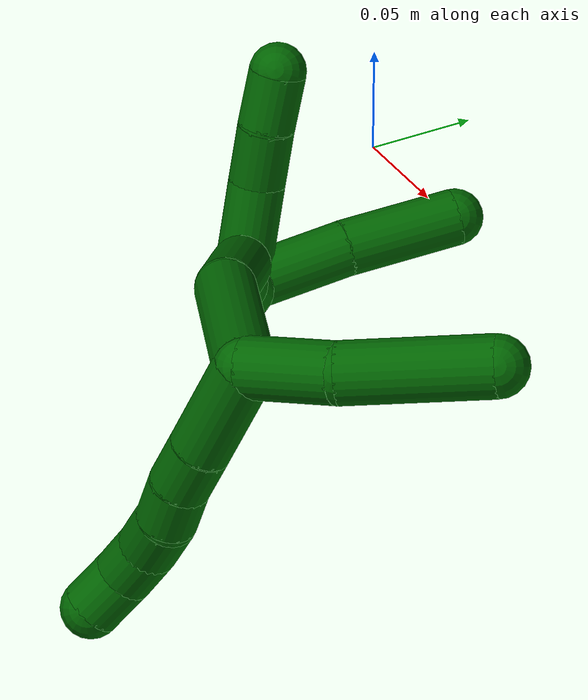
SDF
<sdf version="1.7">
 <world name="default">
  <model name="photoneo_s_sensor">
   <static>1</static>
   <pose>0 0 2 1.57079 1.57079 3.14159</pose>
   <link name="link">
    <inertial><mass>0.1</mass></inertial>
    <sensor name="sensor" type="depth">
     <update_rate>30</update_rate>
     <camera>
      <horizontal_fov>1.22</horizontal_fov>
      <image><width>1920</width><height>1200</height><format>B8G8R8</format></image>
      <clip><near>0.1</near><far>4</far></clip>
      <depth_camera><output>points</output></depth_camera>
     </camera>
     <plugin name="camera_plugin" filename="libgazebo_ros_depth_camera.so">
      <baseline>0.2</baseline>
      <alwaysOn>1</alwaysOn>
      <updateRate>0.0</updateRate>
      <cameraName>camera_ir</cameraName>
      <imageTopicName>/camera/color/image_raw</imageTopicName>
      <cameraInfoTopicName>/camera/color/camera_info</cameraInfoTopicName>
      <depthImageTopicName>/camera/depth/image_raw</depthImageTopicName>
      <depthImageCameraInfoTopicName>/camera/depth/camera_info</depthImageCameraInfoTopicName>
      <pointCloudTopicName>/camera/depth/points</pointCloudTopicName>
      <frameName>fr_optical</frameName>
      <pointCloudCutoff>0.1</pointCloudCutoff>
      <pointCloudCutoffMax>2.0</pointCloudCutoffMax>
      <distortionK1>0</distortionK1>
      <distortionK2>0</distortionK2>
      <distortionK3>0</distortionK3>
      <distortionT1>0</distortionT1>
      <distortionT2>0</distortionT2>
      <CxPrime>0</CxPrime>
      <Cx>0</Cx>
      <Cy>0</Cy>
      <focalLength>0</focalLength>
      <hackBaseline>0</hackBaseline>
     </plugin>
    </sensor>
   </link>
  </model>
  <model name="bin">
   <static>1</static>
   <link name="bottom">
    <collision name="collision-bottom">
     <pose>0 0 -0.01 0 -0 0</pose>
     <geometry><box><size>0.8 0.6 0.02</size></box></geometry>
     <surface>
      <friction><ode><mu>100</mu><mu2>100</mu2></ode></friction>
      <contact><collide_bitmask>65535</collide_bitmask></contact>
     </surface>
    </collision>
   </link>
   <link name="west_wall">
    <collision name="collision-west_wall">
     <pose>-0.41 0 0.1 0 -0 0</pose>
     <geometry><box><size>0.02 0.6 0.2</size></box></geometry>
     <surface>
      <friction><ode><mu>100</mu><mu2>100</mu2></ode></friction>
      <contact><collide_bitmask>65535</collide_bitmask></contact>
     </surface>
    </collision>
   </link>
   <link name="east_wall">
    <collision name="collision-east_wall">
     <pose>0.41 0 0.1 0 -0 0</pose>
     <geometry><box><size>0.02 0.6 0.2</size></box></geometry>
     <surface>
      <friction><ode><mu>100</mu><mu2>100</mu2></ode></friction>
      <contact><collide_bitmask>65535</collide_bitmask></contact>
     </surface>
    </collision>
   </link>
   <link name="south_wall">
    <collision name="collision-south_wall">
     <pose>0 -0.31 0.1 0 -0 0</pose>
     <geometry><box><size>0.8 0.02 0.2</size></box></geometry>
     <surface>
      <friction><ode><mu>100</mu><mu2>100</mu2></ode></friction>
      <contact><collide_bitmask>65535</collide_bitmask></contact>
     </surface>
    </collision>
   </link>
   <link name="north_wall">
    <collision name="collision-north_wall">
     <pose>0 0.31 0.1 0 -0 0</pose>
     <geometry><box><size>0.8 0.02 0.2</size></box></geometry>
     <surface>
      <friction><ode><mu>100</mu><mu2>100</mu2></ode></friction>
      <contact><collide_bitmask>65535</collide_bitmask></contact>
     </surface>
    </collision>
   </link>
  </model>
  <model name="6">
   <static>0</static>
   <link name="6">
    <collision name="collision-cylinder-e_1_2_8">
     <pose>0.012015 -0.014107 -0.012682 2.30306 0.564607 1.15386</pose>
     <geometry><cylinder><radius>0.0125</radius><length>0.044909</length></cylinder></geometry>
     <surface>
      <friction><ode><mu>1.16</mu><mu2>1.16</mu2><slip1>0</slip1><slip2>0</slip2></ode></friction>
      <contact><ode><kp>1e+06</kp><kd>1</kd><max_vel>0</max_vel><min_depth>0.001</min_depth></ode></contact>
     </surface>
    </collision>
    <visual name="visual-cylinder-e_1_2_8">
     <pose>0.012015 -0.014107 -0.012682 2.30306 0.564607 1.15386</pose>
     <geometry><cylinder><radius>0.0125</radius><length>0.044909</length></cylinder></geometry>
     <material><ambient>0 0.392157 0.003922 1</ambient></material>
    </visual>
    <collision name="collision-cylinder-e_2_8_9">
     <pose>0.029633 -0.034985 -0.032127 2.35553 0.529682 1.15857</pose>
     <geometry><cylinder><radius>0.0125</radius><length>0.022179</length></cylinder></geometry>
     <surface>
      <friction><ode><mu>1.16</mu><mu2>1.16</mu2><slip1>0</slip1><slip2>0</slip2></ode></friction>
      <contact><ode><kp>1e+06</kp><kd>1</kd><max_vel>0</max_vel><min_depth>0.001</min_depth></ode></contact>
     </surface>
    </collision>
    <visual name="visual-cylinder-e_2_8_9">
     <pose>0.029633 -0.034985 -0.032127 2.35553 0.529682 1.15857</pose>
     <geometry><cylinder><radius>0.0125</radius><length>0.022179</length></cylinder></geometry>
     <material><ambient>0 0.392157 0.003922 1</ambient></material>
    </visual>
    <collision name="collision-cylinder-e_3_9_10">
     <pose>0.041119 -0.047105 -0.045505 2.4617 0.605016 1.44603</pose>
     <geometry><cylinder><radius>0.0125</radius><length>0.020687</length></cylinder></geometry>
     <surface>
      <friction><ode><mu>1.16</mu><mu2>1.16</mu2><slip1>0</slip1><slip2>0</slip2></ode></friction>
      <contact><ode><kp>1e+06</kp><kd>1</kd><max_vel>0</max_vel><min_depth>0.001</min_depth></ode></contact>
     </surface>
    </collision>
    <visual name="visual-cylinder-e_3_9_10">
     <pose>0.041119 -0.047105 -0.045505 2.4617 0.605016 1.44603</pose>
     <geometry><cylinder><radius>0.0125</radius><length>0.020687</length></cylinder></geometry>
     <material><ambient>0 0.392157 0.003922 1</ambient></material>
    </visual>
    <collision name="collision-cylinder-e_4_10_11">
     <pose>0.051165 -0.058612 -0.060325 2.4977 0.385482 1.05879</pose>
     <geometry><cylinder><radius>0.0125</radius><length>0.022142</length></cylinder></geometry>
     <surface>
      <friction><ode><mu>1.16</mu><mu2>1.16</mu2><slip1>0</slip1><slip2>0</slip2></ode></friction>
      <contact><ode><kp>1e+06</kp><kd>1</kd><max_vel>0</max_vel><min_depth>0.001</min_depth></ode></contact>
     </surface>
    </collision>
    <visual name="visual-cylinder-e_4_10_11">
     <pose>0.051165 -0.058612 -0.060325 2.4977 0.385482 1.05879</pose>
     <geometry><cylinder><radius>0.0125</radius><length>0.022142</length></cylinder></geometry>
     <material><ambient>0 0.392157 0.003922 1</ambient></material>
    </visual>
    <collision name="collision-cylinder-e_5_11_12">
     <pose>0.059254 -0.071877 -0.074386 2.26007 0.403008 0.817348</pose>
     <geometry><cylinder><radius>0.0125</radius><length>0.020022</length></cylinder></geometry>
     <surface>
      <friction><ode><mu>1.16</mu><mu2>1.16</mu2><slip1>0</slip1><slip2>0</slip2></ode></friction>
      <contact><ode><kp>1e+06</kp><kd>1</kd><max_vel>0</max_vel><min_depth>0.001</min_depth></ode></contact>
     </surface>
    </collision>
    <visual name="visual-cylinder-e_5_11_12">
     <pose>0.059254 -0.071877 -0.074386 2.26007 0.403008 0.817348</pose>
     <geometry><cylinder><radius>0.0125</radius><length>0.020022</length></cylinder></geometry>
     <material><ambient>0 0.392157 0.003922 1</ambient></material>
    </visual>
    <collision name="collision-cylinder-e_6_12_6">
     <pose>0.067588 -0.087546 -0.083049 1.88756 0.454988 0.618514</pose>
     <geometry><cylinder><radius>0.0125</radius><length>0.020062</length></cylinder></geometry>
     <surface>
      <friction><ode><mu>1.16</mu><mu2>1.16</mu2><slip1>0</slip1><slip2>0</slip2></ode></friction>
      <contact><ode><kp>1e+06</kp><kd>1</kd><max_vel>0</max_vel><min_depth>0.001</min_depth></ode></contact>
     </surface>
    </collision>
    <visual name="visual-cylinder-e_6_12_6">
     <pose>0.067588 -0.087546 -0.083049 1.88756 0.454988 0.618514</pose>
     <geometry><cylinder><radius>0.0125</radius><length>0.020062</length></cylinder></geometry>
     <material><ambient>0 0.392157 0.003922 1</ambient></material>
    </visual>
    <collision name="collision-cylinder-e_1_2_13">
     <pose>0.006294 0.017089 0.00628 -1.21862 0.332824 -0.233379</pose>
     <geometry><cylinder><radius>0.0125</radius><length>0.038528</length></cylinder></geometry>
     <surface>
      <friction><ode><mu>1.16</mu><mu2>1.16</mu2><slip1>0</slip1><slip2>0</slip2></ode></friction>
      <contact><ode><kp>1e+06</kp><kd>1</kd><max_vel>0</max_vel><min_depth>0.001</min_depth></ode></contact>
     </surface>
    </collision>
    <visual name="visual-cylinder-e_1_2_13">
     <pose>0.006294 0.017089 0.00628 -1.21862 0.332824 -0.233379</pose>
     <geometry><cylinder><radius>0.0125</radius><length>0.038528</length></cylinder></geometry>
     <material><ambient>0 0.392157 0.003922 1</ambient></material>
    </visual>
    <collision name="collision-cylinder-e_2_13_5">
     <pose>0.02021 0.063848 0.015086 -1.48588 0.250593 -0.230356</pose>
     <geometry><cylinder><radius>0.0125</radius><length>0.061472</length></cylinder></geometry>
     <surface>
      <friction><ode><mu>1.16</mu><mu2>1.16</mu2><slip1>0</slip1><slip2>0</slip2></ode></friction>
      <contact><ode><kp>1e+06</kp><kd>1</kd><max_vel>0</max_vel><min_depth>0.001</min_depth></ode></contact>
     </surface>
    </collision>
    <visual name="visual-cylinder-e_2_13_5">
     <pose>0.02021 0.063848 0.015086 -1.48588 0.250593 -0.230356</pose>
     <geometry><cylinder><radius>0.0125</radius><length>0.061472</length></cylinder></geometry>
     <material><ambient>0 0.392157 0.003922 1</ambient></material>
    </visual>
    <collision name="collision-cylinder-e_1_2_14">
     <pose>-0.016709 -0.003207 -0.038652 3.05881 -0.406799 -2.74529</pose>
     <geometry><cylinder><radius>0.0125</radius><length>0.084461</length></cylinder></geometry>
     <surface>
      <friction><ode><mu>1.16</mu><mu2>1.16</mu2><slip1>0</slip1><slip2>0</slip2></ode></friction>
      <contact><ode><kp>1e+06</kp><kd>1</kd><max_vel>0</max_vel><min_depth>0.001</min_depth></ode></contact>
     </surface>
    </collision>
    <visual name="visual-cylinder-e_1_2_14">
     <pose>-0.016709 -0.003207 -0.038652 3.05881 -0.406799 -2.74529</pose>
     <geometry><cylinder><radius>0.0125</radius><length>0.084461</length></cylinder></geometry>
     <material><ambient>0 0.392157 0.003922 1</ambient></material>
    </visual>
    <collision name="collision-cylinder-e_2_14_15">
     <pose>-0.03808 -0.005738 -0.11216 -3.12221 -0.132913 2.85236</pose>
     <geometry><cylinder><radius>0.0125</radius><length>0.070348</length></cylinder></geometry>
     <surface>
      <friction><ode><mu>1.16</mu><mu2>1.16</mu2><slip1>0</slip1><slip2>0</slip2></ode></friction>
      <contact><ode><kp>1e+06</kp><kd>1</kd><max_vel>0</max_vel><min_depth>0.001</min_depth></ode></contact>
     </surface>
    </collision>
    <visual name="visual-cylinder-e_2_14_15">
     <pose>-0.03808 -0.005738 -0.11216 -3.12221 -0.132913 2.85236</pose>
     <geometry><cylinder><radius>0.0125</radius><length>0.070348</length></cylinder></geometry>
     <material><ambient>0 0.392157 0.003922 1</ambient></material>
    </visual>
    <collision name="collision-cylinder-e_3_15_16">
     <pose>-0.042255 -0.008756 -0.165836 2.94777 0.025368 0.259492</pose>
     <geometry><cylinder><radius>0.0125</radius><length>0.038367</length></cylinder></geometry>
     <surface>
      <friction><ode><mu>1.16</mu><mu2>1.16</mu2><slip1>0</slip1><slip2>0</slip2></ode></friction>
      <contact><ode><kp>1e+06</kp><kd>1</kd><max_vel>0</max_vel><min_depth>0.001</min_depth></ode></contact>
     </surface>
    </collision>
    <visual name="visual-cylinder-e_3_15_16">
     <pose>-0.042255 -0.008756 -0.165836 2.94777 0.025368 0.259492</pose>
     <geometry><cylinder><radius>0.0125</radius><length>0.038367</length></cylinder></geometry>
     <material><ambient>0 0.392157 0.003922 1</ambient></material>
    </visual>
    <collision name="collision-cylinder-e_4_16_17">
     <pose>-0.04149 -0.014406 -0.196535 2.97836 0.023108 0.280646</pose>
     <geometry><cylinder><radius>0.0125</radius><length>0.024088</length></cylinder></geometry>
     <surface>
      <friction><ode><mu>1.16</mu><mu2>1.16</mu2><slip1>0</slip1><slip2>0</slip2></ode></friction>
      <contact><ode><kp>1e+06</kp><kd>1</kd><max_vel>0</max_vel><min_depth>0.001</min_depth></ode></contact>
     </surface>
    </collision>
    <visual name="visual-cylinder-e_4_16_17">
     <pose>-0.04149 -0.014406 -0.196535 2.97836 0.023108 0.280646</pose>
     <geometry><cylinder><radius>0.0125</radius><length>0.024088</length></cylinder></geometry>
     <material><ambient>0 0.392157 0.003922 1</ambient></material>
    </visual>
    <collision name="collision-cylinder-e_5_17_18">
     <pose>-0.039727 -0.016571 -0.219406 3.12266 0.134296 2.86183</pose>
     <geometry><cylinder><radius>0.0125</radius><length>0.022184</length></cylinder></geometry>
     <surface>
      <friction><ode><mu>1.16</mu><mu2>1.16</mu2><slip1>0</slip1><slip2>0</slip2></ode></friction>
      <contact><ode><kp>1e+06</kp><kd>1</kd><max_vel>0</max_vel><min_depth>0.001</min_depth></ode></contact>
     </surface>
    </collision>
    <visual name="visual-cylinder-e_5_17_18">
     <pose>-0.039727 -0.016571 -0.219406 3.12266 0.134296 2.86183</pose>
     <geometry><cylinder><radius>0.0125</radius><length>0.022184</length></cylinder></geometry>
     <material><ambient>0 0.392157 0.003922 1</ambient></material>
    </visual>
    <collision name="collision-cylinder-e_6_18_19">
     <pose>-0.036893 -0.016988 -0.240411 3.12077 0.133869 2.83346</pose>
     <geometry><cylinder><radius>0.0125</radius><length>0.020216</length></cylinder></geometry>
     <surface>
      <friction><ode><mu>1.16</mu><mu2>1.16</mu2><slip1>0</slip1><slip2>0</slip2></ode></friction>
      <contact><ode><kp>1e+06</kp><kd>1</kd><max_vel>0</max_vel><min_depth>0.001</min_depth></ode></contact>
     </surface>
    </collision>
    <visual name="visual-cylinder-e_6_18_19">
     <pose>-0.036893 -0.016988 -0.240411 3.12077 0.133869 2.83346</pose>
     <geometry><cylinder><radius>0.0125</radius><length>0.020216</length></cylinder></geometry>
     <material><ambient>0 0.392157 0.003922 1</ambient></material>
    </visual>
    <collision name="collision-cylinder-e_7_19_20">
     <pose>-0.035518 -0.018587 -0.260378 3.00273 0.002547 0.036618</pose>
     <geometry><cylinder><radius>0.0125</radius><length>0.020098</length></cylinder></geometry>
     <surface>
      <friction><ode><mu>1.16</mu><mu2>1.16</mu2><slip1>0</slip1><slip2>0</slip2></ode></friction>
      <contact><ode><kp>1e+06</kp><kd>1</kd><max_vel>0</max_vel><min_depth>0.001</min_depth></ode></contact>
     </surface>
    </collision>
    <visual name="visual-cylinder-e_7_19_20">
     <pose>-0.035518 -0.018587 -0.260378 3.00273 0.002547 0.036618</pose>
     <geometry><cylinder><radius>0.0125</radius><length>0.020098</length></cylinder></geometry>
     <material><ambient>0 0.392157 0.003922 1</ambient></material>
    </visual>
    <collision name="collision-cylinder-e_8_20_1">
     <pose>-0.037512 -0.021179 -0.280173 3.02026 -0.200962 -2.05712</pose>
     <geometry><cylinder><radius>0.0125</radius><length>0.020238</length></cylinder></geometry>
     <surface>
      <friction><ode><mu>1.16</mu><mu2>1.16</mu2><slip1>0</slip1><slip2>0</slip2></ode></friction>
      <contact><ode><kp>1e+06</kp><kd>1</kd><max_vel>0</max_vel><min_depth>0.001</min_depth></ode></contact>
     </surface>
    </collision>
    <visual name="visual-cylinder-e_8_20_1">
     <pose>-0.037512 -0.021179 -0.280173 3.02026 -0.200962 -2.05712</pose>
     <geometry><cylinder><radius>0.0125</radius><length>0.020238</length></cylinder></geometry>
     <material><ambient>0 0.392157 0.003922 1</ambient></material>
    </visual>
    <collision name="collision-cylinder-e_1_1_21">
     <pose>-0.040849 0.001298 -0.29687 -1.85259 -0.053369 0.070998</pose>
     <geometry><cylinder><radius>0.0125</radius><length>0.049367</length></cylinder></geometry>
     <surface>
      <friction><ode><mu>1.16</mu><mu2>1.16</mu2><slip1>0</slip1><slip2>0</slip2></ode></friction>
      <contact><ode><kp>1e+06</kp><kd>1</kd><max_vel>0</max_vel><min_depth>0.001</min_depth></ode></contact>
     </surface>
    </collision>
    <visual name="visual-cylinder-e_1_1_21">
     <pose>-0.040849 0.001298 -0.29687 -1.85259 -0.053369 0.070998</pose>
     <geometry><cylinder><radius>0.0125</radius><length>0.049367</length></cylinder></geometry>
     <material><ambient>0 0.392157 0.003922 1</ambient></material>
    </visual>
    <collision name="collision-cylinder-e_2_21_4">
     <pose>-0.041831 0.049376 -0.310458 -1.84007 0.013207 -0.017345</pose>
     <geometry><cylinder><radius>0.0125</radius><length>0.050633</length></cylinder></geometry>
     <surface>
      <friction><ode><mu>1.16</mu><mu2>1.16</mu2><slip1>0</slip1><slip2>0</slip2></ode></friction>
      <contact><ode><kp>1e+06</kp><kd>1</kd><max_vel>0</max_vel><min_depth>0.001</min_depth></ode></contact>
     </surface>
    </collision>
    <visual name="visual-cylinder-e_2_21_4">
     <pose>-0.041831 0.049376 -0.310458 -1.84007 0.013207 -0.017345</pose>
     <geometry><cylinder><radius>0.0125</radius><length>0.050633</length></cylinder></geometry>
     <material><ambient>0 0.392157 0.003922 1</ambient></material>
    </visual>
    <collision name="collision-cylinder-e_1_1_22">
     <pose>-0.059773 -0.011689 -0.283598 -1.03014 -1.01871 0.612391</pose>
     <geometry><cylinder><radius>0.0125</radius><length>0.047546</length></cylinder></geometry>
     <surface>
      <friction><ode><mu>1.16</mu><mu2>1.16</mu2><slip1>0</slip1><slip2>0</slip2></ode></friction>
      <contact><ode><kp>1e+06</kp><kd>1</kd><max_vel>0</max_vel><min_depth>0.001</min_depth></ode></contact>
     </surface>
    </collision>
    <visual name="visual-cylinder-e_1_1_22">
     <pose>-0.059773 -0.011689 -0.283598 -1.03014 -1.01871 0.612391</pose>
     <geometry><cylinder><radius>0.0125</radius><length>0.047546</length></cylinder></geometry>
     <material><ambient>0 0.392157 0.003922 1</ambient></material>
    </visual>
    <collision name="collision-cylinder-e_2_22_23">
     <pose>-0.090467 0.00496 -0.271204 -0.78395 -0.891503 0.390013</pose>
     <geometry><cylinder><radius>0.0125</radius><length>0.026868</length></cylinder></geometry>
     <surface>
      <friction><ode><mu>1.16</mu><mu2>1.16</mu2><slip1>0</slip1><slip2>0</slip2></ode></friction>
      <contact><ode><kp>1e+06</kp><kd>1</kd><max_vel>0</max_vel><min_depth>0.001</min_depth></ode></contact>
     </surface>
    </collision>
    <visual name="visual-cylinder-e_2_22_23">
     <pose>-0.090467 0.00496 -0.271204 -0.78395 -0.891503 0.390013</pose>
     <geometry><cylinder><radius>0.0125</radius><length>0.026868</length></cylinder></geometry>
     <material><ambient>0 0.392157 0.003922 1</ambient></material>
    </visual>
    <collision name="collision-cylinder-e_3_23_3">
     <pose>-0.111207 0.017149 -0.260869 -0.960298 -0.934343 0.513788</pose>
     <geometry><cylinder><radius>0.0125</radius><length>0.025585</length></cylinder></geometry>
     <surface>
      <friction><ode><mu>1.16</mu><mu2>1.16</mu2><slip1>0</slip1><slip2>0</slip2></ode></friction>
      <contact><ode><kp>1e+06</kp><kd>1</kd><max_vel>0</max_vel><min_depth>0.001</min_depth></ode></contact>
     </surface>
    </collision>
    <visual name="visual-cylinder-e_3_23_3">
     <pose>-0.111207 0.017149 -0.260869 -0.960298 -0.934343 0.513788</pose>
     <geometry><cylinder><radius>0.0125</radius><length>0.025585</length></cylinder></geometry>
     <material><ambient>0 0.392157 0.003922 1</ambient></material>
    </visual>
    <collision name="collision-sphere-3">
     <pose>-0.121495 0.023379 -0.25651 0 -0 0</pose>
     <geometry><sphere><radius>0.0125</radius></sphere></geometry>
     <surface>
      <friction><ode><mu>1.16</mu><mu2>1.16</mu2><slip1>0</slip1><slip2>0</slip2></ode></friction>
      <contact><ode><kp>1e+06</kp><kd>1</kd><max_vel>0</max_vel><min_depth>0.001</min_depth></ode></contact>
     </surface>
    </collision>
    <visual name="visual-sphere-3">
     <pose>-0.121495 0.023379 -0.25651 0 -0 0</pose>
     <geometry><sphere><radius>0.0125</radius></sphere></geometry>
     <material><ambient>0 0.392157 0.003922 1</ambient></material>
    </visual>
    <collision name="collision-sphere-23">
     <pose>-0.100919 0.01092 -0.265228 0 -0 0</pose>
     <geometry><sphere><radius>0.0125</radius></sphere></geometry>
     <surface>
      <friction><ode><mu>1.16</mu><mu2>1.16</mu2><slip1>0</slip1><slip2>0</slip2></ode></friction>
      <contact><ode><kp>1e+06</kp><kd>1</kd><max_vel>0</max_vel><min_depth>0.001</min_depth></ode></contact>
     </surface>
    </collision>
    <visual name="visual-sphere-23">
     <pose>-0.100919 0.01092 -0.265228 0 -0 0</pose>
     <geometry><sphere><radius>0.0125</radius></sphere></geometry>
     <material><ambient>0 0.392157 0.003922 1</ambient></material>
    </visual>
    <collision name="collision-sphere-22">
     <pose>-0.080015 -0.000999 -0.277181 0 -0 0</pose>
     <geometry><sphere><radius>0.0125</radius></sphere></geometry>
     <surface>
      <friction><ode><mu>1.16</mu><mu2>1.16</mu2><slip1>0</slip1><slip2>0</slip2></ode></friction>
      <contact><ode><kp>1e+06</kp><kd>1</kd><max_vel>0</max_vel><min_depth>0.001</min_depth></ode></contact>
     </surface>
    </collision>
    <visual name="visual-sphere-22">
     <pose>-0.080015 -0.000999 -0.277181 0 -0 0</pose>
     <geometry><sphere><radius>0.0125</radius></sphere></geometry>
     <material><ambient>0 0.392157 0.003922 1</ambient></material>
    </visual>
    <collision name="collision-sphere-4">
     <pose>-0.041497 0.073778 -0.317193 0 -0 0</pose>
     <geometry><sphere><radius>0.0125</radius></sphere></geometry>
     <surface>
      <friction><ode><mu>1.16</mu><mu2>1.16</mu2><slip1>0</slip1><slip2>0</slip2></ode></friction>
      <contact><ode><kp>1e+06</kp><kd>1</kd><max_vel>0</max_vel><min_depth>0.001</min_depth></ode></contact>
     </surface>
    </collision>
    <visual name="visual-sphere-4">
     <pose>-0.041497 0.073778 -0.317193 0 -0 0</pose>
     <geometry><sphere><radius>0.0125</radius></sphere></geometry>
     <material><ambient>0 0.392157 0.003922 1</ambient></material>
    </visual>
    <collision name="collision-sphere-21">
     <pose>-0.042165 0.024974 -0.303724 0 -0 0</pose>
     <geometry><sphere><radius>0.0125</radius></sphere></geometry>
     <surface>
      <friction><ode><mu>1.16</mu><mu2>1.16</mu2><slip1>0</slip1><slip2>0</slip2></ode></friction>
      <contact><ode><kp>1e+06</kp><kd>1</kd><max_vel>0</max_vel><min_depth>0.001</min_depth></ode></contact>
     </surface>
    </collision>
    <visual name="visual-sphere-21">
     <pose>-0.042165 0.024974 -0.303724 0 -0 0</pose>
     <geometry><sphere><radius>0.0125</radius></sphere></geometry>
     <material><ambient>0 0.392157 0.003922 1</ambient></material>
    </visual>
    <collision name="collision-sphere-1">
     <pose>-0.039532 -0.022379 -0.290016 0 -0 0</pose>
     <geometry><sphere><radius>0.0125</radius></sphere></geometry>
     <surface>
      <friction><ode><mu>1.16</mu><mu2>1.16</mu2><slip1>0</slip1><slip2>0</slip2></ode></friction>
      <contact><ode><kp>1e+06</kp><kd>1</kd><max_vel>0</max_vel><min_depth>0.001</min_depth></ode></contact>
     </surface>
    </collision>
    <visual name="visual-sphere-1">
     <pose>-0.039532 -0.022379 -0.290016 0 -0 0</pose>
     <geometry><sphere><radius>0.0125</radius></sphere></geometry>
     <material><ambient>0 0.392157 0.003922 1</ambient></material>
    </visual>
    <collision name="collision-sphere-12">
     <pose>0.06318 -0.078984 -0.080243 0 -0 0</pose>
     <geometry><sphere><radius>0.0125</radius></sphere></geometry>
     <surface>
      <friction><ode><mu>1.16</mu><mu2>1.16</mu2><slip1>0</slip1><slip2>0</slip2></ode></friction>
      <contact><ode><kp>1e+06</kp><kd>1</kd><max_vel>0</max_vel><min_depth>0.001</min_depth></ode></contact>
     </surface>
    </collision>
    <visual name="visual-sphere-12">
     <pose>0.06318 -0.078984 -0.080243 0 -0 0</pose>
     <geometry><sphere><radius>0.0125</radius></sphere></geometry>
     <material><ambient>0 0.392157 0.003922 1</ambient></material>
    </visual>
    <collision name="collision-sphere-11">
     <pose>0.055328 -0.064771 -0.068529 0 -0 0</pose>
     <geometry><sphere><radius>0.0125</radius></sphere></geometry>
     <surface>
      <friction><ode><mu>1.16</mu><mu2>1.16</mu2><slip1>0</slip1><slip2>0</slip2></ode></friction>
      <contact><ode><kp>1e+06</kp><kd>1</kd><max_vel>0</max_vel><min_depth>0.001</min_depth></ode></contact>
     </surface>
    </collision>
    <visual name="visual-sphere-11">
     <pose>0.055328 -0.064771 -0.068529 0 -0 0</pose>
     <geometry><sphere><radius>0.0125</radius></sphere></geometry>
     <material><ambient>0 0.392157 0.003922 1</ambient></material>
    </visual>
    <collision name="collision-sphere-10">
     <pose>0.047002 -0.052454 -0.052121 0 -0 0</pose>
     <geometry><sphere><radius>0.0125</radius></sphere></geometry>
     <surface>
      <friction><ode><mu>1.16</mu><mu2>1.16</mu2><slip1>0</slip1><slip2>0</slip2></ode></friction>
      <contact><ode><kp>1e+06</kp><kd>1</kd><max_vel>0</max_vel><min_depth>0.001</min_depth></ode></contact>
     </surface>
    </collision>
    <visual name="visual-sphere-10">
     <pose>0.047002 -0.052454 -0.052121 0 -0 0</pose>
     <geometry><sphere><radius>0.0125</radius></sphere></geometry>
     <material><ambient>0 0.392157 0.003922 1</ambient></material>
    </visual>
    <collision name="collision-sphere-9">
     <pose>0.035236 -0.041757 -0.038889 0 -0 0</pose>
     <geometry><sphere><radius>0.0125</radius></sphere></geometry>
     <surface>
      <friction><ode><mu>1.16</mu><mu2>1.16</mu2><slip1>0</slip1><slip2>0</slip2></ode></friction>
      <contact><ode><kp>1e+06</kp><kd>1</kd><max_vel>0</max_vel><min_depth>0.001</min_depth></ode></contact>
     </surface>
    </collision>
    <visual name="visual-sphere-9">
     <pose>0.035236 -0.041757 -0.038889 0 -0 0</pose>
     <geometry><sphere><radius>0.0125</radius></sphere></geometry>
     <material><ambient>0 0.392157 0.003922 1</ambient></material>
    </visual>
    <collision name="collision-sphere-2">
     <geometry><sphere><radius>0.0125</radius></sphere></geometry>
     <surface>
      <friction><ode><mu>1.16</mu><mu2>1.16</mu2><slip1>0</slip1><slip2>0</slip2></ode></friction>
      <contact><ode><kp>1e+06</kp><kd>1</kd><max_vel>0</max_vel><min_depth>0.001</min_depth></ode></contact>
     </surface>
    </collision>
    <visual name="visual-sphere-2">
     <geometry><sphere><radius>0.0125</radius></sphere></geometry>
     <material><ambient>0 0.392157 0.003922 1</ambient></material>
    </visual>
    <collision name="collision-sphere-19">
     <pose>-0.035543 -0.017197 -0.250426 0 -0 0</pose>
     <geometry><sphere><radius>0.0125</radius></sphere></geometry>
     <surface>
      <friction><ode><mu>1.16</mu><mu2>1.16</mu2><slip1>0</slip1><slip2>0</slip2></ode></friction>
      <contact><ode><kp>1e+06</kp><kd>1</kd><max_vel>0</max_vel><min_depth>0.001</min_depth></ode></contact>
     </surface>
    </collision>
    <visual name="visual-sphere-19">
     <pose>-0.035543 -0.017197 -0.250426 0 -0 0</pose>
     <geometry><sphere><radius>0.0125</radius></sphere></geometry>
     <material><ambient>0 0.392157 0.003922 1</ambient></material>
    </visual>
    <collision name="collision-sphere-8">
     <pose>0.02403 -0.028214 -0.025364 0 -0 0</pose>
     <geometry><sphere><radius>0.0125</radius></sphere></geometry>
     <surface>
      <friction><ode><mu>1.16</mu><mu2>1.16</mu2><slip1>0</slip1><slip2>0</slip2></ode></friction>
      <contact><ode><kp>1e+06</kp><kd>1</kd><max_vel>0</max_vel><min_depth>0.001</min_depth></ode></contact>
     </surface>
    </collision>
    <visual name="visual-sphere-8">
     <pose>0.02403 -0.028214 -0.025364 0 -0 0</pose>
     <geometry><sphere><radius>0.0125</radius></sphere></geometry>
     <material><ambient>0 0.392157 0.003922 1</ambient></material>
    </visual>
    <collision name="collision-sphere-6">
     <pose>0.071996 -0.096108 -0.085856 0 -0 0</pose>
     <geometry><sphere><radius>0.0125</radius></sphere></geometry>
     <surface>
      <friction><ode><mu>1.16</mu><mu2>1.16</mu2><slip1>0</slip1><slip2>0</slip2></ode></friction>
      <contact><ode><kp>1e+06</kp><kd>1</kd><max_vel>0</max_vel><min_depth>0.001</min_depth></ode></contact>
     </surface>
    </collision>
    <visual name="visual-sphere-6">
     <pose>0.071996 -0.096108 -0.085856 0 -0 0</pose>
     <geometry><sphere><radius>0.0125</radius></sphere></geometry>
     <material><ambient>0 0.392157 0.003922 1</ambient></material>
    </visual>
    <collision name="collision-sphere-13">
     <pose>0.012588 0.034179 0.012561 0 -0 0</pose>
     <geometry><sphere><radius>0.0125</radius></sphere></geometry>
     <surface>
      <friction><ode><mu>1.16</mu><mu2>1.16</mu2><slip1>0</slip1><slip2>0</slip2></ode></friction>
      <contact><ode><kp>1e+06</kp><kd>1</kd><max_vel>0</max_vel><min_depth>0.001</min_depth></ode></contact>
     </surface>
    </collision>
    <visual name="visual-sphere-13">
     <pose>0.012588 0.034179 0.012561 0 -0 0</pose>
     <geometry><sphere><radius>0.0125</radius></sphere></geometry>
     <material><ambient>0 0.392157 0.003922 1</ambient></material>
    </visual>
    <collision name="collision-sphere-5">
     <pose>0.027831 0.093516 0.017612 0 -0 0</pose>
     <geometry><sphere><radius>0.0125</radius></sphere></geometry>
     <surface>
      <friction><ode><mu>1.16</mu><mu2>1.16</mu2><slip1>0</slip1><slip2>0</slip2></ode></friction>
      <contact><ode><kp>1e+06</kp><kd>1</kd><max_vel>0</max_vel><min_depth>0.001</min_depth></ode></contact>
     </surface>
    </collision>
    <visual name="visual-sphere-5">
     <pose>0.027831 0.093516 0.017612 0 -0 0</pose>
     <geometry><sphere><radius>0.0125</radius></sphere></geometry>
     <material><ambient>0 0.392157 0.003922 1</ambient></material>
    </visual>
    <collision name="collision-sphere-14">
     <pose>-0.033419 -0.006414 -0.077303 0 -0 0</pose>
     <geometry><sphere><radius>0.0125</radius></sphere></geometry>
     <surface>
      <friction><ode><mu>1.16</mu><mu2>1.16</mu2><slip1>0</slip1><slip2>0</slip2></ode></friction>
      <contact><ode><kp>1e+06</kp><kd>1</kd><max_vel>0</max_vel><min_depth>0.001</min_depth></ode></contact>
     </surface>
    </collision>
    <visual name="visual-sphere-14">
     <pose>-0.033419 -0.006414 -0.077303 0 -0 0</pose>
     <geometry><sphere><radius>0.0125</radius></sphere></geometry>
     <material><ambient>0 0.392157 0.003922 1</ambient></material>
    </visual>
    <collision name="collision-sphere-15">
     <pose>-0.042742 -0.005062 -0.147018 0 -0 0</pose>
     <geometry><sphere><radius>0.0125</radius></sphere></geometry>
     <surface>
      <friction><ode><mu>1.16</mu><mu2>1.16</mu2><slip1>0</slip1><slip2>0</slip2></ode></friction>
      <contact><ode><kp>1e+06</kp><kd>1</kd><max_vel>0</max_vel><min_depth>0.001</min_depth></ode></contact>
     </surface>
    </collision>
    <visual name="visual-sphere-15">
     <pose>-0.042742 -0.005062 -0.147018 0 -0 0</pose>
     <geometry><sphere><radius>0.0125</radius></sphere></geometry>
     <material><ambient>0 0.392157 0.003922 1</ambient></material>
    </visual>
    <collision name="collision-sphere-16">
     <pose>-0.041768 -0.01245 -0.184654 0 -0 0</pose>
     <geometry><sphere><radius>0.0125</radius></sphere></geometry>
     <surface>
      <friction><ode><mu>1.16</mu><mu2>1.16</mu2><slip1>0</slip1><slip2>0</slip2></ode></friction>
      <contact><ode><kp>1e+06</kp><kd>1</kd><max_vel>0</max_vel><min_depth>0.001</min_depth></ode></contact>
     </surface>
    </collision>
    <visual name="visual-sphere-16">
     <pose>-0.041768 -0.01245 -0.184654 0 -0 0</pose>
     <geometry><sphere><radius>0.0125</radius></sphere></geometry>
     <material><ambient>0 0.392157 0.003922 1</ambient></material>
    </visual>
    <collision name="collision-sphere-17">
     <pose>-0.041212 -0.016363 -0.208416 0 -0 0</pose>
     <geometry><sphere><radius>0.0125</radius></sphere></geometry>
     <surface>
      <friction><ode><mu>1.16</mu><mu2>1.16</mu2><slip1>0</slip1><slip2>0</slip2></ode></friction>
      <contact><ode><kp>1e+06</kp><kd>1</kd><max_vel>0</max_vel><min_depth>0.001</min_depth></ode></contact>
     </surface>
    </collision>
    <visual name="visual-sphere-17">
     <pose>-0.041212 -0.016363 -0.208416 0 -0 0</pose>
     <geometry><sphere><radius>0.0125</radius></sphere></geometry>
     <material><ambient>0 0.392157 0.003922 1</ambient></material>
    </visual>
    <collision name="collision-sphere-18">
     <pose>-0.038242 -0.016779 -0.230396 0 -0 0</pose>
     <geometry><sphere><radius>0.0125</radius></sphere></geometry>
     <surface>
      <friction><ode><mu>1.16</mu><mu2>1.16</mu2><slip1>0</slip1><slip2>0</slip2></ode></friction>
      <contact><ode><kp>1e+06</kp><kd>1</kd><max_vel>0</max_vel><min_depth>0.001</min_depth></ode></contact>
     </surface>
    </collision>
    <visual name="visual-sphere-18">
     <pose>-0.038242 -0.016779 -0.230396 0 -0 0</pose>
     <geometry><sphere><radius>0.0125</radius></sphere></geometry>
     <material><ambient>0 0.392157 0.003922 1</ambient></material>
    </visual>
    <collision name="collision-sphere-20">
     <pose>-0.035492 -0.019978 -0.27033 0 -0 0</pose>
     <geometry><sphere><radius>0.0125</radius></sphere></geometry>
     <surface>
      <friction><ode><mu>1.16</mu><mu2>1.16</mu2><slip1>0</slip1><slip2>0</slip2></ode></friction>
      <contact><ode><kp>1e+06</kp><kd>1</kd><max_vel>0</max_vel><min_depth>0.001</min_depth></ode></contact>
     </surface>
    </collision>
    <visual name="visual-sphere-20">
     <pose>-0.035492 -0.019978 -0.27033 0 -0 0</pose>
     <geometry><sphere><radius>0.0125</radius></sphere></geometry>
     <material><ambient>0 0.392157 0.003922 1</ambient></material>
    </visual>
    <inertial>
     <pose>-0.019808 -0.003446 -0.141664 0 -0 0</pose>
     <mass>0.75</mass>
     <inertia><ixx>-3e-06</ixx><ixy>0</ixy><ixz>0</ixz><iyy>0.000101</iyy><iyz>0</iyz><izz>-4.6e-05</izz></inertia>
    </inertial>
   </link>
   <pose>0.322636 -0.237817 0.143171 0.50502 0.908009 -0.00236</pose>
  </model>
 </world>
</sdf>
